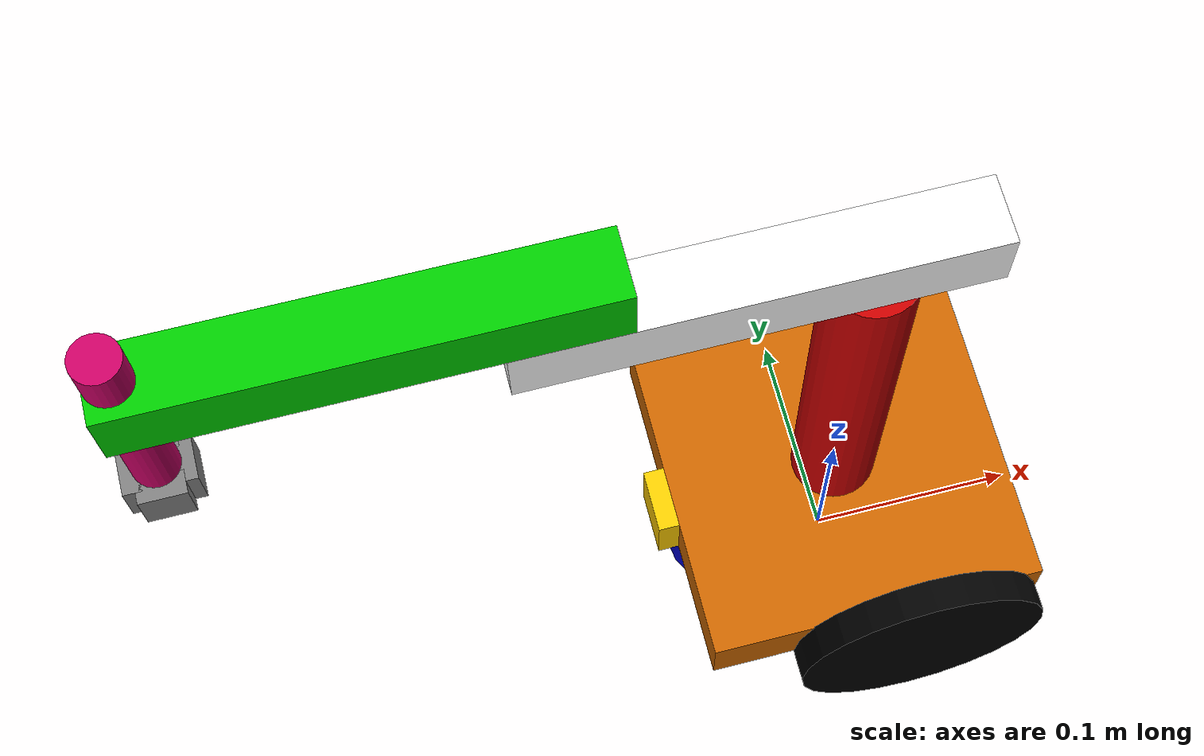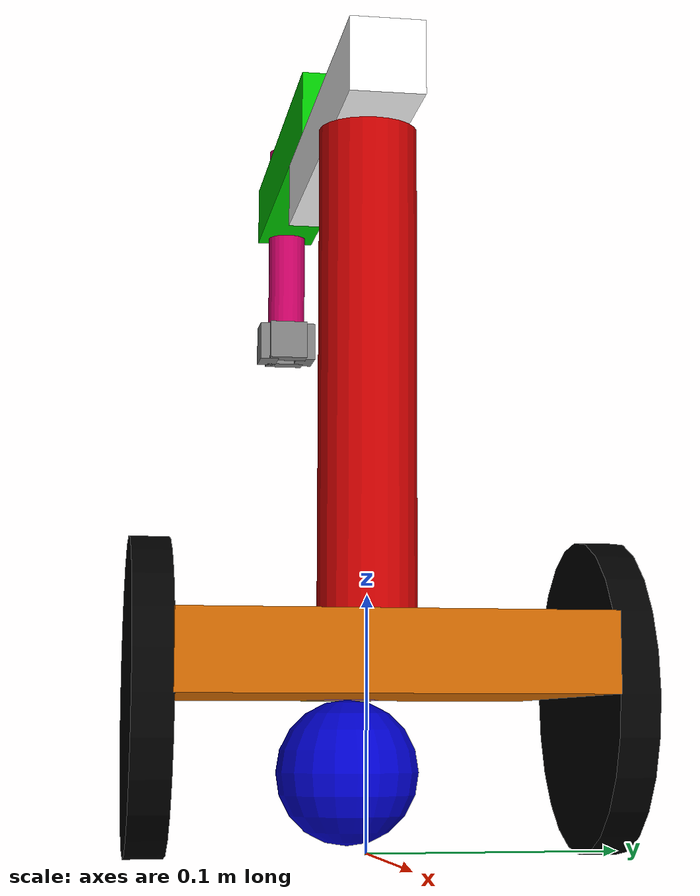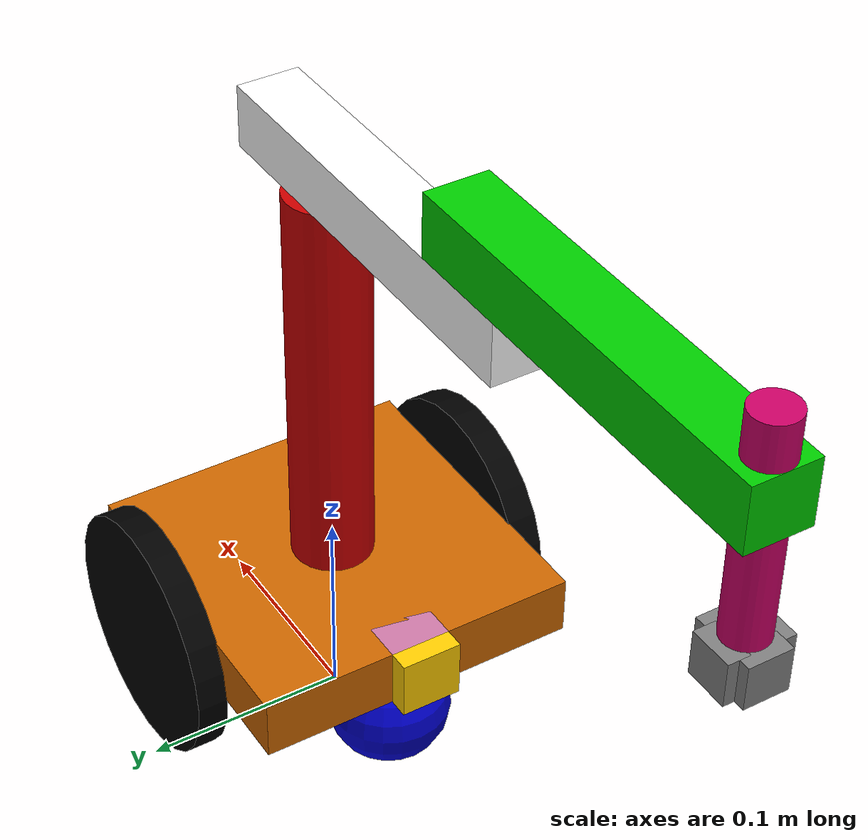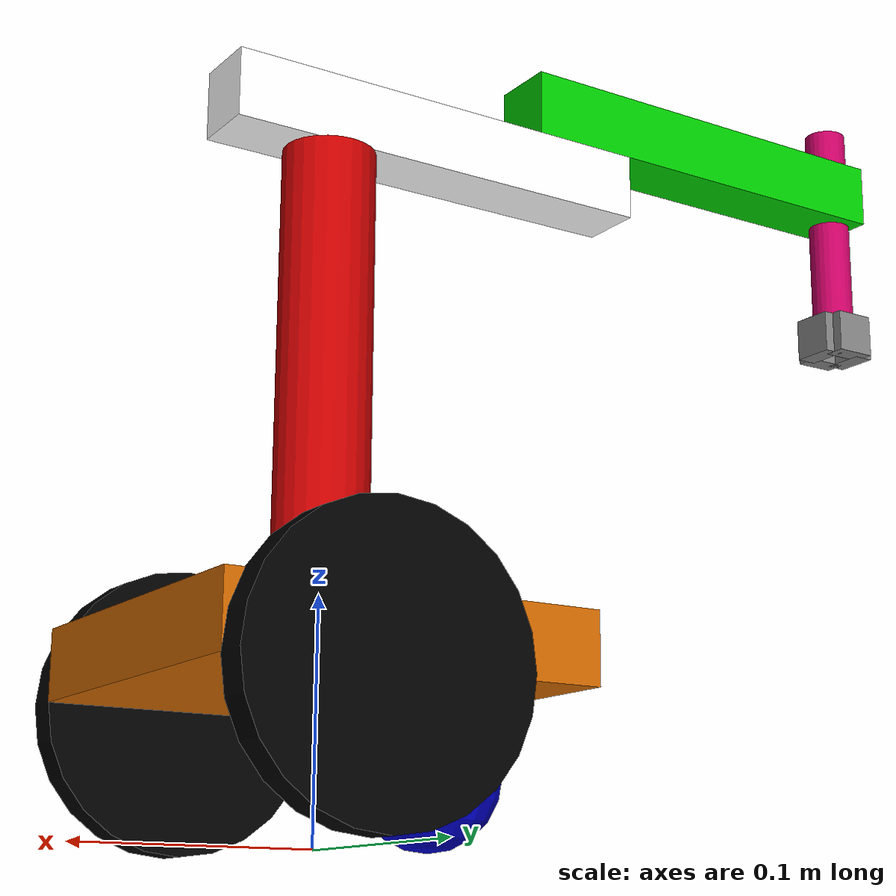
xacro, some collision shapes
<?xml version="1.0"?>
<robot xmlns:xacro="http://www.ros.org/wiki/xacro" name="dd_sim">

    <!--Parameters-->
    <xacro:property name="base_width" value="0.16"/>
    <xacro:property name="base_length" value="0.16"/>
    <xacro:property name="base_height" value="0.03"/>
    <xacro:property name="wheel_radius" value="0.06"/>
    <xacro:property name="wheel_length" value="0.015"/>
    <xacro:property name="wheel_separation" value="0.15"/>
    <xacro:property name="base_wheel_gap" value="0.007"/>
    <xacro:property name="wheel_offset" value="0.02"/>
    <xacro:property name="ball_radius" value="${wheel_radius/2}"/>
    <xacro:property name="ball_offset" value="-0.052"/>

    <xacro:property name="link_01_radius" value="0.02"/>
    <xacro:property name="link_01_length" value="0.2"/>
    <xacro:property name="link_02_width"  value="0.03"/>
    <xacro:property name="link_02_length" value="0.2"/>
    <xacro:property name="link_02_height" value="0.03"/>
    <xacro:property name="link_03_width"  value="0.03"/>
    <xacro:property name="link_03_length" value="0.2"/>
    <xacro:property name="link_03_height" value="0.03"/>
    <xacro:property name="link_04_radius" value="0.01"/>
    <xacro:property name="link_04_length" value="0.1"/>

    <xacro:property name="camera_width" value="0.03"/>
    <xacro:property name="camera_length" value="0.01"/>
    <xacro:property name="camera_height" value="0.03"/>

    <xacro:property name="gripper_width"  value="0.02"/>
    <xacro:property name="gripper_length" value="0.01"/>
    <xacro:property name="gripper_height" value="0.02"/>

    <xacro:property name="hokuyo_width" value="0.03"/>
    <xacro:property name="hokuyo_length" value="0.03"/>
    <xacro:property name="hokuyo_height" value="0.03"/>

    <!--Color Properties-->
    <material name="blue">
        <color rgba="0 0 0.8 1"/>
    </material>
    <material name="black">
        <color rgba="0 0 0 1"/>
    </material>
    <material name="white">
        <color rgba="1 1 1 1"/>
    </material>
    <material name="red">
        <color rgba="0.8 0.0 0.0 1.0"/>
    </material>
    <material name = "orange">
		<color rgba ="0.8 0.4 0.0 1.0"/>
	</material>
    <material name = "green">
		<color rgba ="0 0.8 0.0 1.0"/>
	</material>
    <material name = "purple">
		<color rgba ="0.8 0 0.4 1.0"/>
	</material>
    <material name = "yellow">
		<color rgba ="1 0.8 0 1.0"/>
	</material>
    <material name = "grey">
		<color rgba ="0.5 0.5 0.5 1.0"/>
	</material>

    <!--Interial macros-->
    <xacro:macro name="cylinder_inertia" params="m r h">
        <inertial>
        <mass value="${m}"/>
        <inertia ixx="${m*(3*r*r+h*h)/12}" ixy = "0" ixz = "0" iyy="${m*(3*r*r+h*h)/12}" iyz = "0" izz="${m*r*r/2}"/>
        </inertial>
    </xacro:macro>

    <xacro:macro name="box_inertia" params="m w h d">
        <inertial>
        <mass value="${m}"/>
        <inertia ixx="${m / 12.0 * (d*d + h*h)}" ixy="0.0" ixz="0.0" iyy="${m / 12.0 * (w*w + h*h)}" iyz="0.0" izz="${m / 12.0 * (w*w + d*d)}"/>
        </inertial>
    </xacro:macro>

    <xacro:macro name="sphere_inertia" params="m r">
        <inertial>
        <mass value="${m}"/>
        <inertia ixx="${2.0*m*(r*r)/5.0}" ixy="0.0" ixz="0.0" iyy="${2.0*m*(r*r)/5.0}" iyz="0.0" izz="${2.0*m*(r*r)/5.0}"/>
        </inertial>
    </xacro:macro>

    <!-- add properties to gazebo-->
    <gazebo reference = "base_link">
        <material>Gazebo/Orange</material>
    </gazebo>
    <gazebo reference = "left_wheel">
        <mu1>10</mu1>
        <mu2>10</mu2>
        <kp>500000.0</kp>
        <kd>10.0</kd>
        <minDepth>0.001</minDepth>
        <maxVel>0.1</maxVel>
        <fdir1>1 0 0</fdir1>
        <material>Gazebo/Black</material>
    </gazebo>
    <gazebo reference = "right_wheel">
        <mu1>10</mu1>
        <mu2>10</mu2>
        <kp>500000.0</kp>
        <kd>10.0</kd>
        <minDepth>0.001</minDepth>
        <maxVel>0.1</maxVel>
        <fdir1>1 0 0</fdir1>
        <material>Gazebo/Black</material>
    </gazebo>
    <gazebo reference = "ball_wheel">
        <mu1>10</mu1>
        <mu2>10</mu2>
        <kp>500000.0</kp>
        <kd>10.0</kd>
        <minDepth>0.001</minDepth>
        <maxVel>0.1</maxVel>
        <fdir1>1 0 0</fdir1>
        <material>Gazebo/Blue</material>
    </gazebo>
    <gazebo reference = "link_01">
        <material>Gazebo/Red</material>
    </gazebo>
    <gazebo reference = "link_02">
        <material>Gazebo/White</material>
    </gazebo>
    <gazebo reference = "link_03">
        <material>Gazebo/Green</material>
    </gazebo>
    <gazebo reference = "link_04">
        <material>Gazebo/Purple</material>
    </gazebo>
    <gazebo reference = "camera_link">
        <material>Gazebo/Yellow</material>
    </gazebo>
    <gazebo reference = "left_gripper">
        <material>Gazebo/Grey</material>
    </gazebo>
    <gazebo reference = "right_gripper">
        <material>Gazebo/Grey</material>
    </gazebo>
    <gazebo reference = "front_gripper">
        <material>Gazebo/Grey</material>
    </gazebo>
    <gazebo reference = "back_gripper">
        <material>Gazebo/DarkGrey</material>
    </gazebo>

    <!--foorprint-->
    <link name = "footprint">
        <xacro:box_inertia m="0.1" w="0.001" h="0.001" d = "0.001"/>
        <visual>
            <origin xyz = "0 0 0 " rpy = "0 0 0 "/>
            <geometry>
                <box size="0.001 0.001 0.001"/>
            </geometry>
        </visual>
    </link>

    <!--Base Link-->
    <link name="base_link">
        <xacro:box_inertia m="3" w="${base_length}" h="${base_width}" d="${base_height}"/>
        <visual>
          <geometry>
            <box size="${base_length} ${base_width} ${base_height}"/>
          </geometry>
          <!--origin rpy="0 0 0" xyz="0 0 ${(base_height/2)+(2*ball_radius)}"/-->
          <material name="orange"/>
        </visual>
        <collision>
          <geometry>
            <box size="${base_length} ${base_width} ${base_height}"/>
          </geometry>
          <!--origin rpy="0 0 0" xyz="0 0 ${(base_height/2)+(2*ball_radius)}"/-->
        </collision>
    </link>

    <!--base link to footprint-->
    <joint name = "base_link_footprint" type="fixed">
        <origin xyz = "0 0 ${wheel_radius + wheel_length}" rpy = "0 0 0"/>
        <parent link = "footprint"/>
        <child link="base_link"/>
    </joint>

    <!--Wheel link & joint macro-->
    <xacro:macro name="wheel" params="prefix reflect">
        <link name="${prefix}_wheel">
        <visual>
            <origin xyz="0 0 0" rpy="${pi/2} 0 0"/>
            <geometry>
                <cylinder radius="${wheel_radius}" length="${wheel_length}"/>
            </geometry>
            <material name="black"/>
        </visual>
        <collision>
            <origin xyz="0 0 0" rpy="${pi/2} 0 0"/>
            <geometry>
                <cylinder radius="${wheel_radius}" length="${wheel_length}"/>
            </geometry>
        </collision>
        <xacro:cylinder_inertia m="2" r="${wheel_radius}" h="${wheel_length}"/>
        </link>

        <joint name="${prefix}_wheel_joint" type="continuous">
            <axis xyz="0 1 0" rpy="0 0 0" />
            <parent link="base_link"/>
            <child link="${prefix}_wheel"/>
            <origin xyz="${wheel_offset} ${(base_width/2+base_wheel_gap)*reflect} -${wheel_length}" rpy="0 0 0"/>
        </joint>
    </xacro:macro>

    <!--Create Left & Right Wheel links/joints-->
    <xacro:wheel prefix="left" reflect="1"/>
    <xacro:wheel prefix="right" reflect="-1"/>

    <!--ball Wheel Link-->
    <link name="ball_wheel">
        <visual>
            <origin xyz="0 0 0" rpy="0 0 0"/>
            <geometry>
                <sphere radius="${ball_radius}"/>
            </geometry>
            <material name="blue"/>
        </visual>
        <collision>
        <origin xyz="0 0 0" rpy="0 0 0"/>
        <geometry>
            <sphere radius="${ball_radius}"/>
        </geometry>
        </collision>
        <xacro:sphere_inertia m="2" r="${ball_radius}"/>
    </link>

    <!--Ball Wheel Joint-->
    <joint name="ball_wheel_joint" type="continuous">
        <axis xyz="0 1 0" rpy="0 0 0" />
        <parent link="base_link"/>
        <child link="ball_wheel"/>
        <origin xyz="${ball_offset} 0 -${ball_radius+wheel_length}" rpy="0 0 0"/>
    </joint>

    <!-- manipulator-->
    <link name="link_01">
        <visual>
            <origin rpy = "0 0 0 " xyz = "0 0 ${link_01_length/2}"/>
            <geometry>
                <cylinder radius="${link_01_radius}" length="${link_01_length}"/>
            </geometry>
            <material name="red"/>
        </visual>
        <collision>
            <origin xyz="0 0 ${link_01_length/2}" rpy="0 0 0"/>
            <geometry>
                <cylinder radius="${link_01_radius}" length="${link_01_length}"/>
            </geometry>
        </collision>
        <xacro:cylinder_inertia m="0.5" r="${link_01_radius}" h="${link_01_length}"/>
    </link>

    <joint name="base_link_to_link_01" type="fixed">
        <axis xyz="0 0 1"/>
        <origin rpy = "0 0 0 " xyz = "0 0 ${base_height/2}"/>
        <parent link = "base_link"/>
        <child link = "link_01"/>
    </joint>

    <link name="link_02">
        <visual>
            <origin rpy = "0 0 0 " xyz = "-${link_02_length/4} 0 0"/>
            <geometry>
                <box size="${link_02_length} ${link_02_width} ${link_02_height}"/>
            </geometry>
            <material name="white"/>
        </visual>
        <collision>
            <origin xyz="-${link_02_length/4} 0 0" rpy="0 0 0"/>
            <geometry>
                <box size="${link_02_length} ${link_02_width} ${link_02_height}"/>
            </geometry>
        </collision>
        <xacro:box_inertia m="0.5" w="${link_02_length}" h="${link_02_width}" d="${link_02_height}"/>
    </link>

    <joint name="link_01_to_link_02" type="revolute">
        <axis xyz="0 0 1"/>
        <limit effort = "100.0" lower="-3.14" upper="3.14" velocity="10"/>
        <origin rpy = "0 0 0 " xyz = "0 0 ${link_01_length+link_02_height/2}"/>
        <parent link = "link_01"/>
        <child link = "link_02"/>
    </joint>

    <transmission name="trans_link_01_to_link_02">
        <type>transmission_interface/SimpleTransmission</type>
        <joint name = "link_01_to_link_02">
            <hardwareInterface>EffortJointInterface</hardwareInterface>
        </joint>
        <actuator name="motor_link_01_to_link_02">
            <hardwareInterface>EffortJointInterface</hardwareInterface>
            <mechanicalReduction>1</mechanicalReduction>
        </actuator>
    </transmission>

    <link name="link_03">
        <visual>
            <origin rpy = "0 0 0 " xyz = " -${link_03_length/2} 0 ${link_02_height/2}"/>
            <geometry>
                <box size="${link_03_length} ${link_03_width} ${link_03_height}"/>
            </geometry>
            <material name="green"/>
        </visual>
        <collision>
            <origin xyz="-${link_03_length/2} 0 ${link_02_height/2}" rpy="0 0 0"/>
            <geometry>
                <box size="${link_03_length} ${link_03_width} ${link_03_height}"/>
            </geometry>
        </collision>
        <xacro:box_inertia m="0.5" w="${link_03_length}" h="${link_03_width}" d="${link_03_height}"/>
    </link>

    <joint name="link_02_to_link_03" type="revolute">
        <axis xyz="0 0 1"/>
        <limit effort = "100.0" lower="-3.14" upper="3.14" velocity="10"/>
        <origin rpy = "0 0 0 " xyz = " -${link_03_length/2} 0 ${link_02_height/2}"/>
        <parent link = "link_02"/>
        <child link = "link_03"/>
    </joint>

    <transmission name="trans_link_02_to_link_03">
        <type>transmission_interface/SimpleTransmission</type>
        <joint name = "link_02_to_link_03">
            <hardwareInterface>EffortJointInterface</hardwareInterface>
        </joint>
        <actuator name="motor_link_02_to_link_03">
            <hardwareInterface>EffortJointInterface</hardwareInterface>
            <mechanicalReduction>1</mechanicalReduction>
        </actuator>
    </transmission>

    <link name="link_04">
        <visual>
            <origin rpy = "0 0 0 " xyz = "0 0 ${link_04_length/2}"/>
            <geometry>
                <cylinder radius="${link_04_radius}" length="${link_04_length}"/>
            </geometry>
            <material name="purple"/>
        </visual>
        <collision>
            <origin xyz="0 0 ${link_04_length/2}" rpy="0 0 0"/>
            <geometry>
                <cylinder radius="${link_04_radius}" length="${link_04_length}"/>
            </geometry>
        </collision>
        <xacro:cylinder_inertia m="0.25" r="${link_04_radius}" h="${link_04_length}"/>
    </link>

    <joint name="link_03_to_link_04" type="prismatic">
        <axis xyz="0 0 1"/>
        <limit effort = "100.0" lower="-${link_04_length/2}" upper="0" velocity="1"/>
        <origin rpy = "0 0 0 " xyz = "${-link_03_length+link_04_radius} 0 -${link_04_length/2}"/>
        <parent link = "link_03"/>
        <child link = "link_04"/>
    </joint>

    <!--camera-->
    <link name = "camera_link">
        <visual>
            <origin rpy = "0 0 0 " xyz = " 0 0 0"/>
            <geometry>
                <box size="${camera_length} ${camera_width} ${camera_height}"/>
            </geometry>
            <material name="yellow"/>
        </visual>
        <collision>
            <origin xyz="0 0 0" rpy="0 0 0"/>
            <geometry>
                <box size="${camera_length} ${camera_width} ${camera_height}"/>
            </geometry>
        </collision>
        <xacro:box_inertia m="0.1" w="${camera_length}" h="${camera_width}" d="${camera_height}"/>
    </link>

    <joint name="camera_joint" type="fixed">
        <axis xyz="0 1 0"/>
        <origin rpy = "0 0 ${pi} " xyz = "${-base_width/2-camera_length/2} 0 0"/>
        <parent link = "base_link"/>
        <child link = "camera_link"/>
    </joint>

    <!-- gripper-->
    <link name = "left_gripper">
        <visual>
            <origin rpy = "0 0 0 " xyz = " 0 0 0"/>
            <geometry>
                <box size="${gripper_width} ${gripper_length} ${gripper_height}"/>
            </geometry>
            <material name="grey"/>
        </visual>
        <collision>
            <origin xyz="0 0 0" rpy="0 0 0"/>
            <geometry>
                <box size="${gripper_width} ${gripper_length} ${gripper_height}"/>
            </geometry>
        </collision>
        <xacro:box_inertia m="0.01" w="${gripper_width}" h="${gripper_length}" d="${gripper_height}"/>
    </link>

    <joint name="left_gripper_joint" type="prismatic">
        <axis xyz="0 1 0"/>
        <origin rpy = "0 0 0 " xyz = "0 -${gripper_width/2} -${gripper_height/2}"/>
        <parent link = "link_04"/>
        <child link = "left_gripper"/>
        <limit effort = "100" velocity="1" lower="-0.01" upper="0.0"/>
    </joint>

    <link name = "right_gripper">
        <visual>
            <origin rpy = "0 0 0 " xyz = " 0 0 0"/>
            <geometry>
                <box size="${gripper_width} ${gripper_length} ${gripper_height}"/>
            </geometry>
            <material name="grey"/>
        </visual>
        <collision>
            <origin xyz="0 0 0" rpy="0 0 0"/>
            <geometry>
                <box size="${gripper_width} ${gripper_length} ${gripper_height}"/>
            </geometry>
        </collision>
        <xacro:box_inertia m="0.01" w="${gripper_width}" h="${gripper_length}" d="${gripper_height}"/>
    </link>

    <joint name="right_gripper_joint" type="prismatic">
        <axis xyz="0 1 0"/>
        <origin rpy = "0 0 0 " xyz = "0 ${gripper_width/2} -${gripper_height/2}"/>
        <parent link = "link_04"/>
        <child link = "right_gripper"/>
        <limit effort = "100" velocity="1" lower="0.0" upper="0.01"/>
    </joint>

    <link name = "front_gripper">
        <visual>
            <origin rpy = "0 0 0 " xyz = " 0 0 0"/>
            <geometry>
                <box size="${gripper_length} ${gripper_width} ${gripper_height}"/>
            </geometry>
            <material name="grey"/>
        </visual>
        <collision>
            <origin xyz="0 0 0" rpy="0 0 0"/>
            <geometry>
                <box size="${gripper_length} ${gripper_width} ${gripper_height}"/>
            </geometry>
        </collision>
        <xacro:box_inertia m="0.01" w="${gripper_length}" h="${gripper_width}" d="${gripper_height}"/>
    </link>

    <joint name="front_gripper_joint" type="prismatic">
        <axis xyz="1 0 0"/>
        <origin rpy = "0 0 0 " xyz = "-${gripper_width/2} 0 -${gripper_height/2}"/>
        <parent link = "link_04"/>
        <child link = "front_gripper"/>
        <limit effort = "100" velocity="1" lower="-0.01" upper="0.0"/>
    </joint>

    <link name = "back_gripper">
        <visual>
            <origin rpy = "0 0 0 " xyz = " 0 0 0"/>
            <geometry>
                <box size="${gripper_length} ${gripper_width} ${gripper_height}"/>
            </geometry>
            <material name="grey"/>
        </visual>
        <collision>
            <origin xyz="0 0 0" rpy="0 0 0"/>
            <geometry>
                <box size="${gripper_length} ${gripper_width} ${gripper_height}"/>
            </geometry>
        </collision>
        <xacro:box_inertia m="0.01" w="${gripper_length}" h="${gripper_width}" d="${gripper_height}"/>
    </link>

    <joint name="back_gripper_joint" type="prismatic">
        <axis xyz="1 0 0"/>
        <origin rpy = "0 0 0 " xyz = "${gripper_width/2} 0 -${gripper_height/2}"/>
        <parent link = "link_04"/>
        <child link = "back_gripper"/>
        <limit effort = "100" velocity="1" lower="0.0" upper="0.01"/>
    </joint>

    <!--hokuyo laser-->
    <link name = "hokuyo_link">
        <collision>
            <origin xyz = "0 0 ${hokuyo_height} " rpy = "0 0 0 "/>>
            <geometry>
                <box size = "${hokuyo_width} ${hokuyo_length} ${hokuyo_height} "/>
            </geometry>
        </collision>
        <visual>
            <origin xyz = "0 0 ${hokuyo_height} " rpy = "0 0 0 "/>>
            <geometry>
                <mesh filename="package://dd_sim/meshes/hokuyo.dae"/>
            </geometry>
        </visual>
        <xacro:box_inertia m="0.01" w="${hokuyo_length}" h="${hokuyo_width}" d="${hokuyo_height}"/>
    </link>

    <joint name = "hokuyo_joint" type="fixed">
        <axis xyz = "0 1 0"/>
        <origin rpy = "0 0 ${pi} " xyz = "${-base_width/2+hokuyo_length/2} 0 -${hokuyo_height}"/>
        <parent link = "base_link"/>
        <child link = "hokuyo_link"/>
    </joint>

    <xacro:include filename="$(find dd_sim)/urdf/dd_gazebo_plugins.xacro"/>
    <xacro:include filename="$(find dd_sim)/urdf/camera.gazebo"/>
    <xacro:include filename="$(find dd_sim)/urdf/hokuyo.gazebo"/>
    <gazebo>
        <plugin name="gazebo_ros_control" filename="libgazebo_ros_control.so">
            <robotNamespace>/dd</robotNamespace>
        </plugin>
    </gazebo>

</robot>
